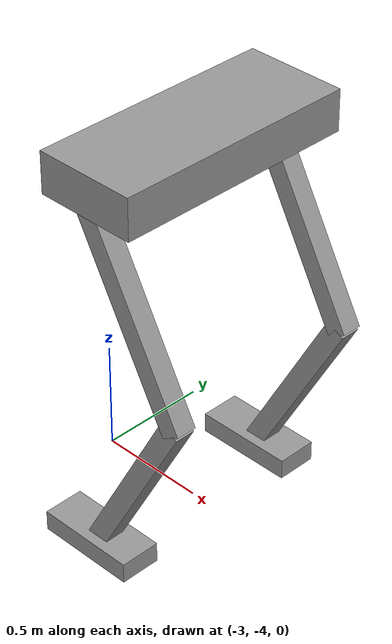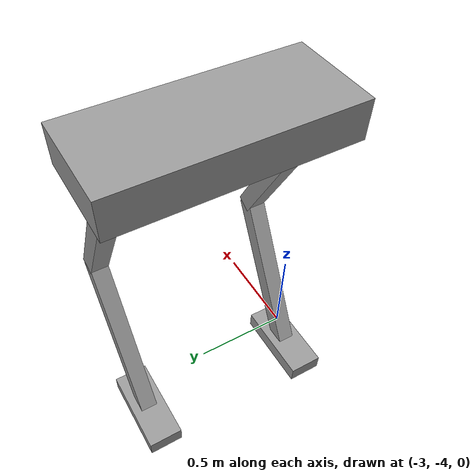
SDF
<?xml version='1.0'?>
<sdf version='1.7'>
  <model name='HumanoidRobot'>
    <link name='link_0'>
      <inertial>
        <mass>1</mass>
        <inertia>
          <ixx>0.166667</ixx>
          <ixy>0</ixy>
          <ixz>0</ixz>
          <iyy>0.166667</iyy>
          <iyz>0</iyz>
          <izz>0.166667</izz>
        </inertia>
        <pose>0 0 0 0 -0 0</pose>
      </inertial>
      <pose>-2.93875 -4.13679 -0.426059 0 -0 0</pose>
      <gravity>1</gravity>
      <self_collide>0</self_collide>
      <kinematic>0</kinematic>
      <enable_wind>0</enable_wind>
      <visual name='visual'>
        <pose>0 0 0 0 -0 0</pose>
        <geometry>
          <box>
            <size>0.5 0.2 0.1</size>
          </box>
        </geometry>
        <material>
          <lighting>1</lighting>
          <script>
            <uri>file://media/materials/scripts/gazebo.material</uri>
            <name>Gazebo/Grey</name>
          </script>
          <shader type='pixel'>
            <normal_map>__default__</normal_map>
          </shader>
          <ambient>0.3 0.3 0.3 1</ambient>
          <diffuse>0.7 0.7 0.7 1</diffuse>
          <specular>0.01 0.01 0.01 1</specular>
          <emissive>0 0 0 1</emissive>
        </material>
        <transparency>0</transparency>
        <cast_shadows>1</cast_shadows>
      </visual>
      <collision name='collision'>
        <laser_retro>0</laser_retro>
        <max_contacts>10</max_contacts>
        <pose>0 0 0 0 -0 0</pose>
        <geometry>
          <box>
            <size>0.5 0.2 0.1</size>
          </box>
        </geometry>
        <surface>
          <friction>
            <ode>
              <mu>1</mu>
              <mu2>1</mu2>
              <fdir1>0 0 0</fdir1>
              <slip1>0</slip1>
              <slip2>0</slip2>
            </ode>
            <torsional>
              <coefficient>1</coefficient>
              <patch_radius>0</patch_radius>
              <surface_radius>0</surface_radius>
              <use_patch_radius>1</use_patch_radius>
              <ode>
                <slip>0</slip>
              </ode>
            </torsional>
          </friction>
          <bounce>
            <restitution_coefficient>0</restitution_coefficient>
            <threshold>1e+06</threshold>
          </bounce>
          <contact>
            <collide_without_contact>0</collide_without_contact>
            <collide_without_contact_bitmask>1</collide_without_contact_bitmask>
            <collide_bitmask>1</collide_bitmask>
            <ode>
              <soft_cfm>0</soft_cfm>
              <soft_erp>0.2</soft_erp>
              <kp>1e+13</kp>
              <kd>1</kd>
              <max_vel>0.01</max_vel>
              <min_depth>0</min_depth>
            </ode>
            <bullet>
              <split_impulse>1</split_impulse>
              <split_impulse_penetration_threshold>-0.01</split_impulse_penetration_threshold>
              <soft_cfm>0</soft_cfm>
              <soft_erp>0.2</soft_erp>
              <kp>1e+13</kp>
              <kd>1</kd>
            </bullet>
          </contact>
        </surface>
      </collision>
    </link>
    <link name='link_0_clone'>
      <inertial>
        <mass>1</mass>
        <inertia>
          <ixx>0.166667</ixx>
          <ixy>0</ixy>
          <ixz>0</ixz>
          <iyy>0.166667</iyy>
          <iyz>0</iyz>
          <izz>0.166667</izz>
        </inertia>
        <pose>0 0 0 0 -0 0</pose>
      </inertial>
      <pose>-2.93875 -3.13679 -0.426059 0 -0 0</pose>
      <gravity>1</gravity>
      <self_collide>0</self_collide>
      <kinematic>0</kinematic>
      <enable_wind>0</enable_wind>
      <visual name='visual'>
        <pose>0 0 0 0 -0 0</pose>
        <geometry>
          <box>
            <size>0.5 0.2 0.1</size>
          </box>
        </geometry>
        <material>
          <lighting>1</lighting>
          <script>
            <uri>file://media/materials/scripts/gazebo.material</uri>
            <name>Gazebo/Grey</name>
          </script>
          <shader type='pixel'>
            <normal_map>__default__</normal_map>
          </shader>
          <ambient>0.3 0.3 0.3 1</ambient>
          <diffuse>0.7 0.7 0.7 1</diffuse>
          <specular>0.01 0.01 0.01 1</specular>
          <emissive>0 0 0 1</emissive>
        </material>
        <transparency>0</transparency>
        <cast_shadows>1</cast_shadows>
      </visual>
      <collision name='collision'>
        <laser_retro>0</laser_retro>
        <max_contacts>10</max_contacts>
        <pose>0 0 0 0 -0 0</pose>
        <geometry>
          <box>
            <size>0.5 0.2 0.1</size>
          </box>
        </geometry>
        <surface>
          <friction>
            <ode>
              <mu>1</mu>
              <mu2>1</mu2>
              <fdir1>0 0 0</fdir1>
              <slip1>0</slip1>
              <slip2>0</slip2>
            </ode>
            <torsional>
              <coefficient>1</coefficient>
              <patch_radius>0</patch_radius>
              <surface_radius>0</surface_radius>
              <use_patch_radius>1</use_patch_radius>
              <ode>
                <slip>0</slip>
              </ode>
            </torsional>
          </friction>
          <bounce>
            <restitution_coefficient>0</restitution_coefficient>
            <threshold>1e+06</threshold>
          </bounce>
          <contact>
            <collide_without_contact>0</collide_without_contact>
            <collide_without_contact_bitmask>1</collide_without_contact_bitmask>
            <collide_bitmask>1</collide_bitmask>
            <ode>
              <soft_cfm>0</soft_cfm>
              <soft_erp>0.2</soft_erp>
              <kp>1e+13</kp>
              <kd>1</kd>
              <max_vel>0.01</max_vel>
              <min_depth>0</min_depth>
            </ode>
            <bullet>
              <split_impulse>1</split_impulse>
              <split_impulse_penetration_threshold>-0.01</split_impulse_penetration_threshold>
              <soft_cfm>0</soft_cfm>
              <soft_erp>0.2</soft_erp>
              <kp>1e+13</kp>
              <kd>1</kd>
            </bullet>
          </contact>
        </surface>
      </collision>
    </link>
    <link name='link_1'>
      <inertial>
        <mass>1</mass>
        <inertia>
          <ixx>0.166667</ixx>
          <ixy>0</ixy>
          <ixz>0</ixz>
          <iyy>0.166667</iyy>
          <iyz>0</iyz>
          <izz>0.166667</izz>
        </inertia>
        <pose>0 0 0 0 -0 0</pose>
      </inertial>
      <pose>-2.68875 -4.13679 0.023941 0 0.5 0</pose>
      <gravity>1</gravity>
      <self_collide>0</self_collide>
      <kinematic>0</kinematic>
      <enable_wind>0</enable_wind>
      <visual name='visual'>
        <pose>0 0 0 0 -0 0</pose>
        <geometry>
          <box>
            <size>0.1 0.1 1</size>
          </box>
        </geometry>
        <material>
          <lighting>1</lighting>
          <script>
            <uri>file://media/materials/scripts/gazebo.material</uri>
            <name>Gazebo/Grey</name>
          </script>
          <shader type='pixel'>
            <normal_map>__default__</normal_map>
          </shader>
          <ambient>0.3 0.3 0.3 1</ambient>
          <diffuse>0.7 0.7 0.7 1</diffuse>
          <specular>0.01 0.01 0.01 1</specular>
          <emissive>0 0 0 1</emissive>
        </material>
        <transparency>0</transparency>
        <cast_shadows>1</cast_shadows>
      </visual>
      <collision name='collision'>
        <laser_retro>0</laser_retro>
        <max_contacts>10</max_contacts>
        <pose>0 0 0 0 -0 0</pose>
        <geometry>
          <box>
            <size>0.1 0.1 1</size>
          </box>
        </geometry>
        <surface>
          <friction>
            <ode>
              <mu>1</mu>
              <mu2>1</mu2>
              <fdir1>0 0 0</fdir1>
              <slip1>0</slip1>
              <slip2>0</slip2>
            </ode>
            <torsional>
              <coefficient>1</coefficient>
              <patch_radius>0</patch_radius>
              <surface_radius>0</surface_radius>
              <use_patch_radius>1</use_patch_radius>
              <ode>
                <slip>0</slip>
              </ode>
            </torsional>
          </friction>
          <bounce>
            <restitution_coefficient>0</restitution_coefficient>
            <threshold>1e+06</threshold>
          </bounce>
          <contact>
            <collide_without_contact>0</collide_without_contact>
            <collide_without_contact_bitmask>1</collide_without_contact_bitmask>
            <collide_bitmask>1</collide_bitmask>
            <ode>
              <soft_cfm>0</soft_cfm>
              <soft_erp>0.2</soft_erp>
              <kp>1e+13</kp>
              <kd>1</kd>
              <max_vel>0.01</max_vel>
              <min_depth>0</min_depth>
            </ode>
            <bullet>
              <split_impulse>1</split_impulse>
              <split_impulse_penetration_threshold>-0.01</split_impulse_penetration_threshold>
              <soft_cfm>0</soft_cfm>
              <soft_erp>0.2</soft_erp>
              <kp>1e+13</kp>
              <kd>1</kd>
            </bullet>
          </contact>
        </surface>
      </collision>
    </link>
    <link name='link_1_clone'>
      <inertial>
        <mass>1</mass>
        <inertia>
          <ixx>0.166667</ixx>
          <ixy>0</ixy>
          <ixz>0</ixz>
          <iyy>0.166667</iyy>
          <iyz>0</iyz>
          <izz>0.166667</izz>
        </inertia>
        <pose>0 0 0 0 -0 0</pose>
      </inertial>
      <pose>-2.68875 -3.13679 0.023941 0 0.5 0</pose>
      <gravity>1</gravity>
      <self_collide>0</self_collide>
      <kinematic>0</kinematic>
      <enable_wind>0</enable_wind>
      <visual name='visual'>
        <pose>0 0 0 0 -0 0</pose>
        <geometry>
          <box>
            <size>0.1 0.1 1</size>
          </box>
        </geometry>
        <material>
          <lighting>1</lighting>
          <script>
            <uri>file://media/materials/scripts/gazebo.material</uri>
            <name>Gazebo/Grey</name>
          </script>
          <shader type='pixel'>
            <normal_map>__default__</normal_map>
          </shader>
          <ambient>0.3 0.3 0.3 1</ambient>
          <diffuse>0.7 0.7 0.7 1</diffuse>
          <specular>0.01 0.01 0.01 1</specular>
          <emissive>0 0 0 1</emissive>
        </material>
        <transparency>0</transparency>
        <cast_shadows>1</cast_shadows>
      </visual>
      <collision name='collision'>
        <laser_retro>0</laser_retro>
        <max_contacts>10</max_contacts>
        <pose>0 0 0 0 -0 0</pose>
        <geometry>
          <box>
            <size>0.1 0.1 1</size>
          </box>
        </geometry>
        <surface>
          <friction>
            <ode>
              <mu>1</mu>
              <mu2>1</mu2>
              <fdir1>0 0 0</fdir1>
              <slip1>0</slip1>
              <slip2>0</slip2>
            </ode>
            <torsional>
              <coefficient>1</coefficient>
              <patch_radius>0</patch_radius>
              <surface_radius>0</surface_radius>
              <use_patch_radius>1</use_patch_radius>
              <ode>
                <slip>0</slip>
              </ode>
            </torsional>
          </friction>
          <bounce>
            <restitution_coefficient>0</restitution_coefficient>
            <threshold>1e+06</threshold>
          </bounce>
          <contact>
            <collide_without_contact>0</collide_without_contact>
            <collide_without_contact_bitmask>1</collide_without_contact_bitmask>
            <collide_bitmask>1</collide_bitmask>
            <ode>
              <soft_cfm>0</soft_cfm>
              <soft_erp>0.2</soft_erp>
              <kp>1e+13</kp>
              <kd>1</kd>
              <max_vel>0.01</max_vel>
              <min_depth>0</min_depth>
            </ode>
            <bullet>
              <split_impulse>1</split_impulse>
              <split_impulse_penetration_threshold>-0.01</split_impulse_penetration_threshold>
              <soft_cfm>0</soft_cfm>
              <soft_erp>0.2</soft_erp>
              <kp>1e+13</kp>
              <kd>1</kd>
            </bullet>
          </contact>
        </surface>
      </collision>
    </link>
    <link name='link_2'>
      <inertial>
        <mass>1</mass>
        <inertia>
          <ixx>0.166667</ixx>
          <ixy>0</ixy>
          <ixz>0</ixz>
          <iyy>0.166667</iyy>
          <iyz>0</iyz>
          <izz>0.166667</izz>
        </inertia>
        <pose>0 0 0 0 -0 0</pose>
      </inertial>
      <pose>-2.68022 -4.13679 0.873898 0 -0.5 0</pose>
      <gravity>1</gravity>
      <self_collide>0</self_collide>
      <kinematic>0</kinematic>
      <enable_wind>0</enable_wind>
      <visual name='visual'>
        <pose>0 0 0 0 -0 0</pose>
        <geometry>
          <box>
            <size>0.1 0.1 1</size>
          </box>
        </geometry>
        <material>
          <lighting>1</lighting>
          <script>
            <uri>file://media/materials/scripts/gazebo.material</uri>
            <name>Gazebo/Grey</name>
          </script>
          <shader type='pixel'>
            <normal_map>__default__</normal_map>
          </shader>
          <ambient>0.3 0.3 0.3 1</ambient>
          <diffuse>0.7 0.7 0.7 1</diffuse>
          <specular>0.01 0.01 0.01 1</specular>
          <emissive>0 0 0 1</emissive>
        </material>
        <transparency>0</transparency>
        <cast_shadows>1</cast_shadows>
      </visual>
      <collision name='collision'>
        <laser_retro>0</laser_retro>
        <max_contacts>10</max_contacts>
        <pose>0 0 0 0 -0 0</pose>
        <geometry>
          <box>
            <size>0.1 0.1 1</size>
          </box>
        </geometry>
        <surface>
          <friction>
            <ode>
              <mu>1</mu>
              <mu2>1</mu2>
              <fdir1>0 0 0</fdir1>
              <slip1>0</slip1>
              <slip2>0</slip2>
            </ode>
            <torsional>
              <coefficient>1</coefficient>
              <patch_radius>0</patch_radius>
              <surface_radius>0</surface_radius>
              <use_patch_radius>1</use_patch_radius>
              <ode>
                <slip>0</slip>
              </ode>
            </torsional>
          </friction>
          <bounce>
            <restitution_coefficient>0</restitution_coefficient>
            <threshold>1e+06</threshold>
          </bounce>
          <contact>
            <collide_without_contact>0</collide_without_contact>
            <collide_without_contact_bitmask>1</collide_without_contact_bitmask>
            <collide_bitmask>1</collide_bitmask>
            <ode>
              <soft_cfm>0</soft_cfm>
              <soft_erp>0.2</soft_erp>
              <kp>1e+13</kp>
              <kd>1</kd>
              <max_vel>0.01</max_vel>
              <min_depth>0</min_depth>
            </ode>
            <bullet>
              <split_impulse>1</split_impulse>
              <split_impulse_penetration_threshold>-0.01</split_impulse_penetration_threshold>
              <soft_cfm>0</soft_cfm>
              <soft_erp>0.2</soft_erp>
              <kp>1e+13</kp>
              <kd>1</kd>
            </bullet>
          </contact>
        </surface>
      </collision>
    </link>
    <link name='link_2_clone'>
      <inertial>
        <mass>1</mass>
        <inertia>
          <ixx>0.166667</ixx>
          <ixy>0</ixy>
          <ixz>0</ixz>
          <iyy>0.166667</iyy>
          <iyz>0</iyz>
          <izz>0.166667</izz>
        </inertia>
        <pose>0 0 0 0 -0 0</pose>
      </inertial>
      <pose>-2.68022 -3.13679 0.873898 0 -0.5 0</pose>
      <gravity>1</gravity>
      <self_collide>0</self_collide>
      <kinematic>0</kinematic>
      <enable_wind>0</enable_wind>
      <visual name='visual'>
        <pose>0 0 0 0 -0 0</pose>
        <geometry>
          <box>
            <size>0.1 0.1 1</size>
          </box>
        </geometry>
        <material>
          <lighting>1</lighting>
          <script>
            <uri>file://media/materials/scripts/gazebo.material</uri>
            <name>Gazebo/Grey</name>
          </script>
          <shader type='pixel'>
            <normal_map>__default__</normal_map>
          </shader>
          <ambient>0.3 0.3 0.3 1</ambient>
          <diffuse>0.7 0.7 0.7 1</diffuse>
          <specular>0.01 0.01 0.01 1</specular>
          <emissive>0 0 0 1</emissive>
        </material>
        <transparency>0</transparency>
        <cast_shadows>1</cast_shadows>
      </visual>
      <collision name='collision'>
        <laser_retro>0</laser_retro>
        <max_contacts>10</max_contacts>
        <pose>0 0 0 0 -0 0</pose>
        <geometry>
          <box>
            <size>0.1 0.1 1</size>
          </box>
        </geometry>
        <surface>
          <friction>
            <ode>
              <mu>1</mu>
              <mu2>1</mu2>
              <fdir1>0 0 0</fdir1>
              <slip1>0</slip1>
              <slip2>0</slip2>
            </ode>
            <torsional>
              <coefficient>1</coefficient>
              <patch_radius>0</patch_radius>
              <surface_radius>0</surface_radius>
              <use_patch_radius>1</use_patch_radius>
              <ode>
                <slip>0</slip>
              </ode>
            </torsional>
          </friction>
          <bounce>
            <restitution_coefficient>0</restitution_coefficient>
            <threshold>1e+06</threshold>
          </bounce>
          <contact>
            <collide_without_contact>0</collide_without_contact>
            <collide_without_contact_bitmask>1</collide_without_contact_bitmask>
            <collide_bitmask>1</collide_bitmask>
            <ode>
              <soft_cfm>0</soft_cfm>
              <soft_erp>0.2</soft_erp>
              <kp>1e+13</kp>
              <kd>1</kd>
              <max_vel>0.01</max_vel>
              <min_depth>0</min_depth>
            </ode>
            <bullet>
              <split_impulse>1</split_impulse>
              <split_impulse_penetration_threshold>-0.01</split_impulse_penetration_threshold>
              <soft_cfm>0</soft_cfm>
              <soft_erp>0.2</soft_erp>
              <kp>1e+13</kp>
              <kd>1</kd>
            </bullet>
          </contact>
        </surface>
      </collision>
    </link>
    <link name='link_4'>
      <inertial>
        <mass>1</mass>
        <inertia>
          <ixx>0.166667</ixx>
          <ixy>0</ixy>
          <ixz>0</ixz>
          <iyy>0.166667</iyy>
          <iyz>0</iyz>
          <izz>0.166667</izz>
        </inertia>
        <pose>0 0 0 0 -0 0</pose>
      </inertial>
      <pose>-2.87278 -3.62138 1.41019 0 -0 0</pose>
      <gravity>1</gravity>
      <self_collide>0</self_collide>
      <kinematic>0</kinematic>
      <enable_wind>0</enable_wind>
      <visual name='visual'>
        <pose>0 0 0 0 -0 0</pose>
        <geometry>
          <box>
            <size>0.5 1.2 0.2</size>
          </box>
        </geometry>
        <material>
          <lighting>1</lighting>
          <script>
            <uri>file://media/materials/scripts/gazebo.material</uri>
            <name>Gazebo/Grey</name>
          </script>
          <shader type='pixel'>
            <normal_map>__default__</normal_map>
          </shader>
          <ambient>0.3 0.3 0.3 1</ambient>
          <diffuse>0.7 0.7 0.7 1</diffuse>
          <specular>0.01 0.01 0.01 1</specular>
          <emissive>0 0 0 1</emissive>
        </material>
        <transparency>0</transparency>
        <cast_shadows>1</cast_shadows>
      </visual>
      <collision name='collision'>
        <laser_retro>0</laser_retro>
        <max_contacts>10</max_contacts>
        <pose>0 0 0 0 -0 0</pose>
        <geometry>
          <box>
            <size>0.5 1.2 0.2</size>
          </box>
        </geometry>
        <surface>
          <friction>
            <ode>
              <mu>1</mu>
              <mu2>1</mu2>
              <fdir1>0 0 0</fdir1>
              <slip1>0</slip1>
              <slip2>0</slip2>
            </ode>
            <torsional>
              <coefficient>1</coefficient>
              <patch_radius>0</patch_radius>
              <surface_radius>0</surface_radius>
              <use_patch_radius>1</use_patch_radius>
              <ode>
                <slip>0</slip>
              </ode>
            </torsional>
          </friction>
          <bounce>
            <restitution_coefficient>0</restitution_coefficient>
            <threshold>1e+06</threshold>
          </bounce>
          <contact>
            <collide_without_contact>0</collide_without_contact>
            <collide_without_contact_bitmask>1</collide_without_contact_bitmask>
            <collide_bitmask>1</collide_bitmask>
            <ode>
              <soft_cfm>0</soft_cfm>
              <soft_erp>0.2</soft_erp>
              <kp>1e+13</kp>
              <kd>1</kd>
              <max_vel>0.01</max_vel>
              <min_depth>0</min_depth>
            </ode>
            <bullet>
              <split_impulse>1</split_impulse>
              <split_impulse_penetration_threshold>-0.01</split_impulse_penetration_threshold>
              <soft_cfm>0</soft_cfm>
              <soft_erp>0.2</soft_erp>
              <kp>1e+13</kp>
              <kd>1</kd>
            </bullet>
          </contact>
        </surface>
      </collision>
    </link>
    <joint name='link_0_JOINT_1' type='revolute'>
      <parent>link_0</parent>
      <child>link_1</child>
      <pose>0 0 0 0 -0 0</pose>
      <axis>
        <xyz>0 0 1</xyz>
        <limit>
          <lower>-1.79769e+308</lower>
          <upper>1.79769e+308</upper>
          <effort>-1</effort>
          <velocity>-1</velocity>
        </limit>
        <dynamics>
          <spring_reference>0</spring_reference>
          <spring_stiffness>0</spring_stiffness>
          <damping>0</damping>
        </dynamics>
      </axis>
      <physics>
        <ode>
          <limit>
            <cfm>0</cfm>
            <erp>0.2</erp>
          </limit>
          <suspension>
            <cfm>0</cfm>
            <erp>0.2</erp>
          </suspension>
        </ode>
      </physics>
    </joint>
    <joint name='link_0_clone_JOINT_2' type='revolute'>
      <parent>link_0_clone</parent>
      <child>link_1_clone</child>
      <pose>0 0 0 0 -0 0</pose>
      <axis>
        <xyz>0 0 1</xyz>
        <limit>
          <lower>-1.79769e+308</lower>
          <upper>1.79769e+308</upper>
          <effort>-1</effort>
          <velocity>-1</velocity>
        </limit>
        <dynamics>
          <spring_reference>0</spring_reference>
          <spring_stiffness>0</spring_stiffness>
          <damping>0</damping>
        </dynamics>
      </axis>
      <physics>
        <ode>
          <limit>
            <cfm>0</cfm>
            <erp>0.2</erp>
          </limit>
          <suspension>
            <cfm>0</cfm>
            <erp>0.2</erp>
          </suspension>
        </ode>
      </physics>
    </joint>
    <joint name='link_1_JOINT_3' type='revolute'>
      <parent>link_1</parent>
      <child>link_2</child>
      <pose>0 0 0 0 -0 0</pose>
      <axis>
        <xyz>0 0 1</xyz>
        <limit>
          <lower>-1.79769e+308</lower>
          <upper>1.79769e+308</upper>
          <effort>-1</effort>
          <velocity>-1</velocity>
        </limit>
        <dynamics>
          <spring_reference>0</spring_reference>
          <spring_stiffness>0</spring_stiffness>
          <damping>0</damping>
        </dynamics>
      </axis>
      <physics>
        <ode>
          <limit>
            <cfm>0</cfm>
            <erp>0.2</erp>
          </limit>
          <suspension>
            <cfm>0</cfm>
            <erp>0.2</erp>
          </suspension>
        </ode>
      </physics>
    </joint>
    <joint name='link_1_clone_JOINT_4' type='revolute'>
      <parent>link_1_clone</parent>
      <child>link_2_clone</child>
      <pose>0 0 0 0 -0 0</pose>
      <axis>
        <xyz>0 0 1</xyz>
        <limit>
          <lower>-1.79769e+308</lower>
          <upper>1.79769e+308</upper>
          <effort>-1</effort>
          <velocity>-1</velocity>
        </limit>
        <dynamics>
          <spring_reference>0</spring_reference>
          <spring_stiffness>0</spring_stiffness>
          <damping>0</damping>
        </dynamics>
      </axis>
      <physics>
        <ode>
          <limit>
            <cfm>0</cfm>
            <erp>0.2</erp>
          </limit>
          <suspension>
            <cfm>0</cfm>
            <erp>0.2</erp>
          </suspension>
        </ode>
      </physics>
    </joint>
    <joint name='link_4_JOINT_6' type='revolute'>
      <parent>link_4</parent>
      <child>link_2</child>
      <pose>0 0 0 0 -0 0</pose>
      <axis>
        <xyz>1 0 0</xyz>
        <limit>
          <lower>-1.79769e+308</lower>
          <upper>1.79769e+308</upper>
          <effort>-1</effort>
          <velocity>-1</velocity>
        </limit>
        <dynamics>
          <spring_reference>0</spring_reference>
          <spring_stiffness>0</spring_stiffness>
          <damping>0</damping>
        </dynamics>
      </axis>
      <physics>
        <ode>
          <limit>
            <cfm>0</cfm>
            <erp>0.2</erp>
          </limit>
          <suspension>
            <cfm>0</cfm>
            <erp>0.2</erp>
          </suspension>
        </ode>
      </physics>
    </joint>
    <joint name='link_4_JOINT_7' type='revolute'>
      <parent>link_4</parent>
      <child>link_2_clone</child>
      <pose>0 0 0 0 -0 0</pose>
      <axis>
        <xyz>1 0 0</xyz>
        <limit>
          <lower>-1.79769e+308</lower>
          <upper>1.79769e+308</upper>
          <effort>-1</effort>
          <velocity>-1</velocity>
        </limit>
        <dynamics>
          <spring_reference>0</spring_reference>
          <spring_stiffness>0</spring_stiffness>
          <damping>0</damping>
        </dynamics>
      </axis>
      <physics>
        <ode>
          <limit>
            <cfm>0</cfm>
            <erp>0.2</erp>
          </limit>
          <suspension>
            <cfm>0</cfm>
            <erp>0.2</erp>
          </suspension>
        </ode>
      </physics>
    </joint>
    <static>0</static>
    <allow_auto_disable>1</allow_auto_disable>
  </model>
</sdf>
